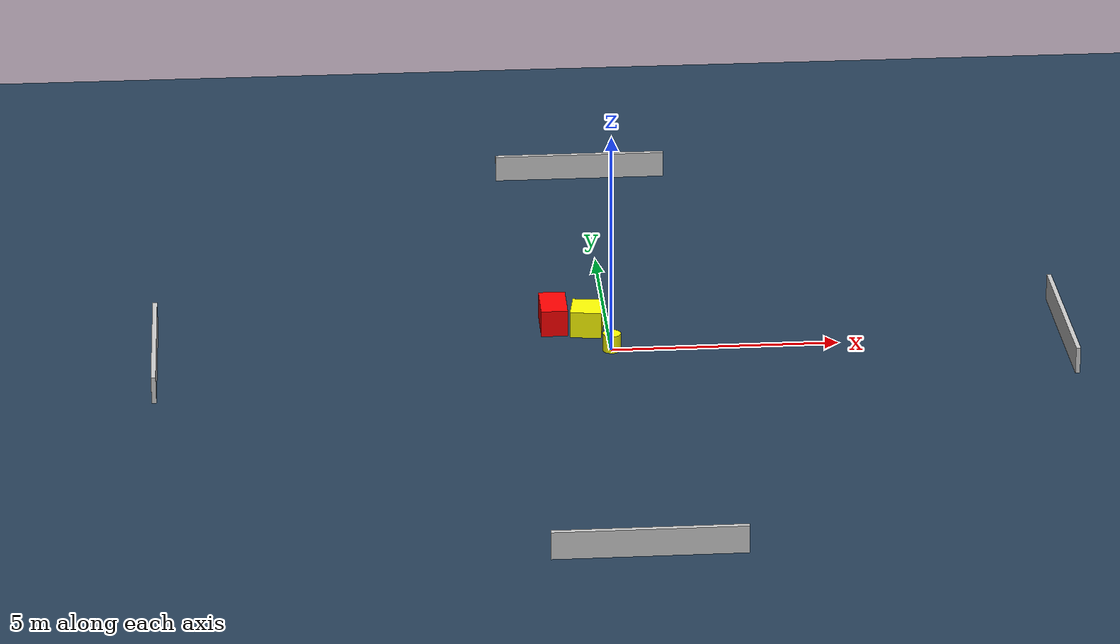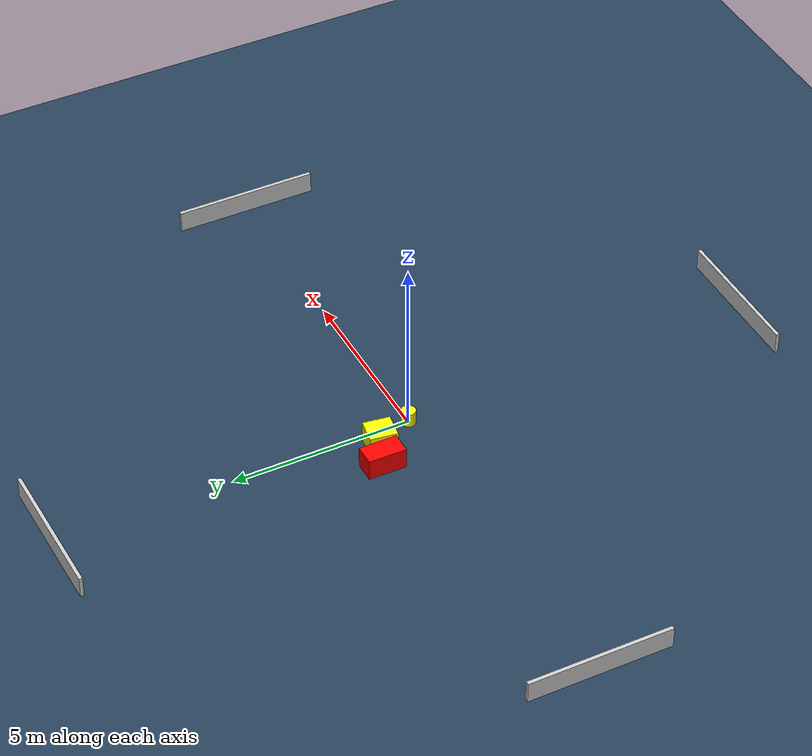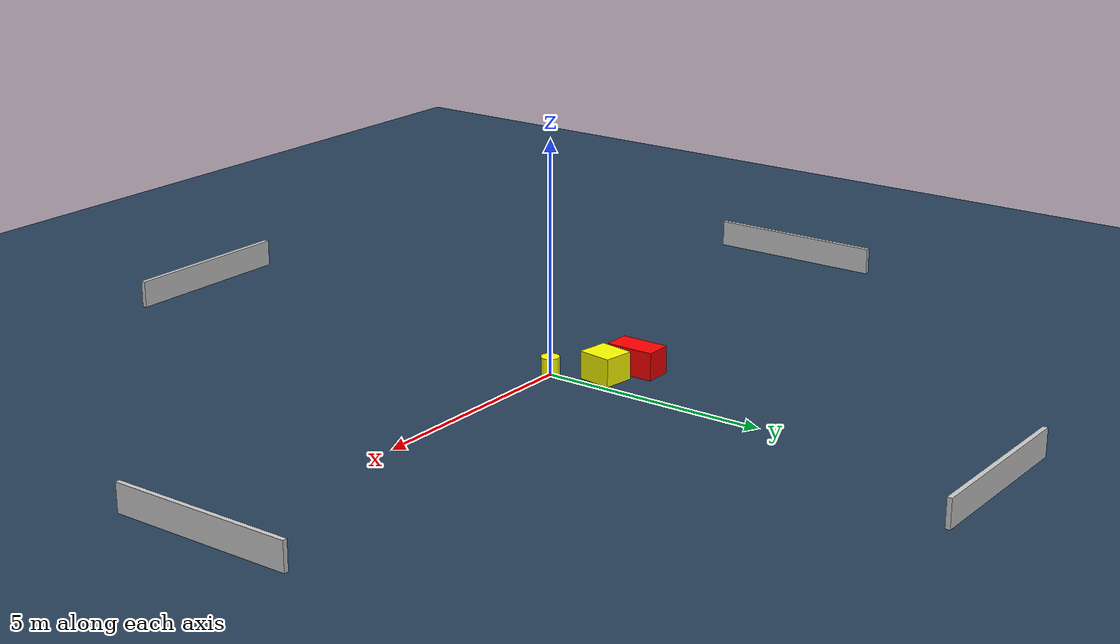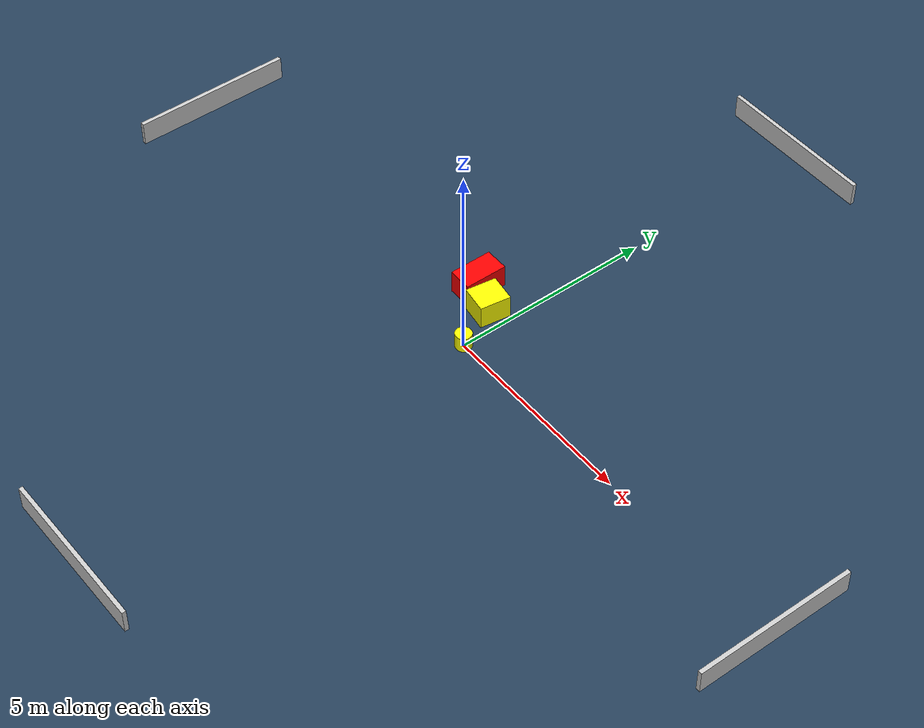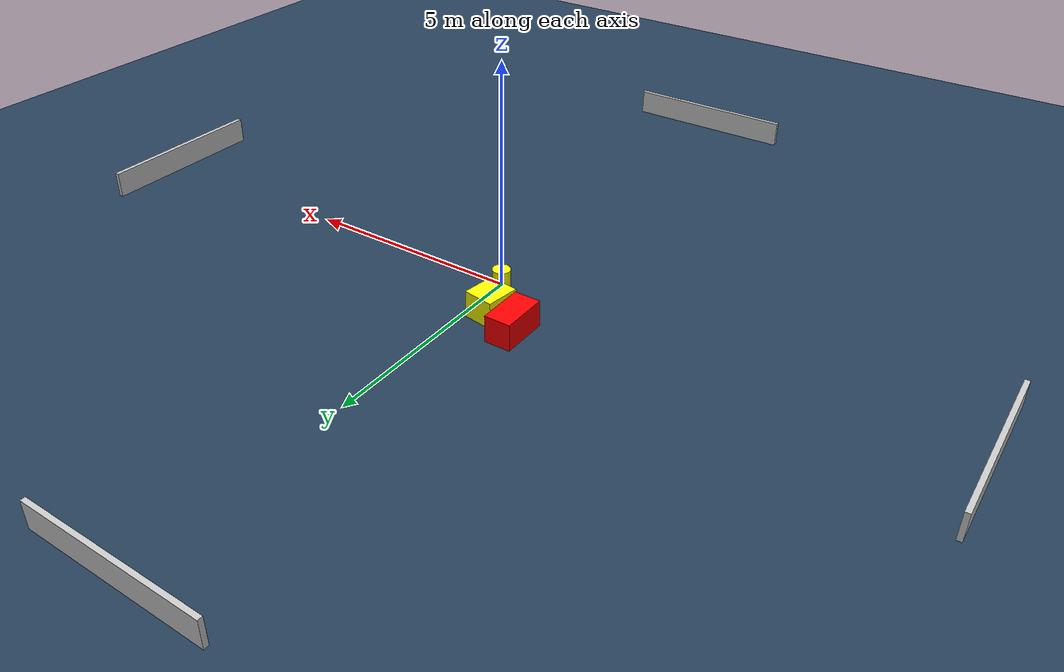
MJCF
<?xml version="1.0" ?>
<mujoco model="generated_environment">
  <option timestep="0.01" integrator="RK4" cone="elliptic"/>
  <default>
    <geom density="1"/>
  </default>
  <asset>
    <texture builtin="gradient" height="3072" name="skybox" rgb1="0.3 0.5 0.7" rgb2="0 0 0" type="skybox" width="512"/>
    <texture builtin="checker" height="300" name="groundplane" rgb1="0.2 0.3 0.4" rgb2="0.1 0.2 0.3" type="2d" width="300"/>
    <material name="groundplane" reflectance="0.2" texrepeat="5 5" texture="groundplane"/>
  </asset>
  <worldbody>
    <light dir="0 0 -1" directional="true" pos="0 0 1.5"/>
    <geom condim="3" friction="0.5 0.005 0.001" material="groundplane" name="floor" pos="0 0 0" size="0 0 0.05" type="plane"/>
    <body name="walls">
      <geom name="wall_1" condim="4" pos="-10.0 0.0 0.3" rgba="0.800000011920929 0.800000011920929 0.800000011920929 1.0" size="0.05 2.0 0.3" type="box"/>
      <geom name="wall_2" condim="4" pos="10.0 0.0 0.3" rgba="0.800000011920929 0.800000011920929 0.800000011920929 1.0" size="0.05 2.0 0.3" type="box"/>
      <geom name="wall_3" condim="4" pos="0.0 -10.0 0.3" rgba="0.800000011920929 0.800000011920929 0.800000011920929 1.0" size="2.0 0.05 0.3" type="box"/>
      <geom name="wall_4" condim="4" pos="0.0 10.0 0.3" rgba="0.800000011920929 0.800000011920929 0.800000011920929 1.0" size="2.0 0.05 0.3" type="box"/>
    </body>
    <body name="robot">
      <joint name="joint_x" type="slide" pos="0 0 0" axis="1 0 0"/>
      <joint name="joint_y" type="slide" pos="0 0 0" axis="0 1 0"/>
      <geom name="robot" type="cylinder" pos="0.0 0.0 0.2" size="0.2 0.2 0.0" mass="5.0" friction="1.0 0.005 0.0001" condim="4" rgba="1.0 1.0 0.0 1.0"/>
    </body>
    <body name="obstacle_1_movable">
      <geom name="obstacle_1_movable" condim="4" pos="-0.4738534602530204 1.059210001263604 0.3" euler="0 0 261.4565403662833" friction="0.0 0.005 0.001" rgba="1.0 1.0 0.0 1.0" size="0.37959173129490453 0.342455395037012 0.3" type="box" mass="0.1"/>
      <joint type="free"/>
    </body>
    <body name="obstacle_2_static">
      <geom name="obstacle_2_static" condim="4" pos="-1.202534536410486 1.3518427180221317 0.3" euler="0 0 179.76853161585126" friction="0.0 0.005 0.001" rgba="1.0 0.0 0.0 1.0" size="0.2955607485023645 0.5311623543035364 0.3" type="box"/>
    </body>
  </worldbody>
  <actuator>
    <motor name="actuator_x" joint="joint_x" gear="1" ctrlrange="-1 1"/>
    <motor name="actuator_y" joint="joint_y" gear="1" ctrlrange="-1 1"/>
  </actuator>
</mujoco>
